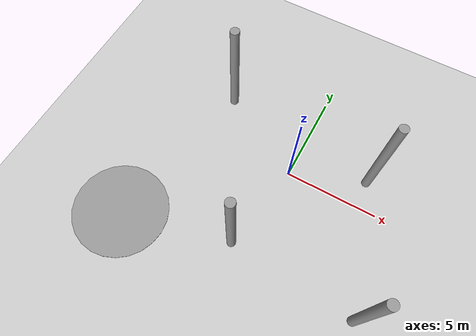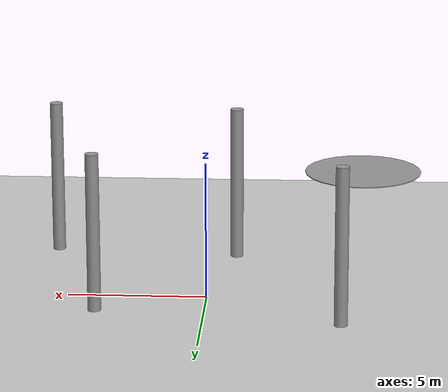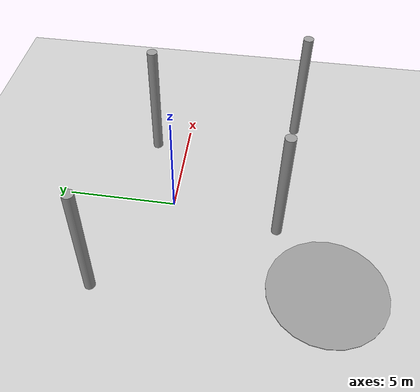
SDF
<sdf version="1.7">
 <world name="default">
  <light name="sun" type="directional">
   <pose>0 0 10 0 -0 0</pose>
   <diffuse>0.8 0.8 0.8 1</diffuse>
   <specular>0.2 0.2 0.2 1</specular>
   <attenuation>
    <range>1000</range>
    <constant>0.9</constant>
    <linear>0.01</linear>
    <quadratic>0.001</quadratic>
   </attenuation>
   <direction>-0.5 0.1 -0.9</direction>
   <spot><inner_angle>0</inner_angle><outer_angle>0</outer_angle><falloff>0</falloff></spot>
  </light>
  <model name="ground_plane">
   <static>1</static>
   <link name="link">
    <collision name="collision">
     <geometry><plane><normal>0 0 1</normal><size>100 100</size></plane></geometry>
     <surface>
      <contact><collide_bitmask>65535</collide_bitmask></contact>
      <friction><ode><mu>100</mu><mu2>50</mu2></ode></friction>
     </surface>
    </collision>
    <visual name="visual">
     <cast_shadows>0</cast_shadows>
     <geometry><plane><normal>0 0 1</normal><size>100 100</size></plane></geometry>
     <material>
      <script><uri>file://media/materials/scripts/gazebo.material</uri><name>Gazebo/Grey</name></script>
     </material>
    </visual>
   </link>
  </model>
  <gravity>0 0 -9.8</gravity>
  <magnetic_field>6e-06 2.3e-05 -4.2e-05</magnetic_field>
  <atmosphere type="adiabatic"/>
  <physics type="ode">
   <max_step_size>0.001</max_step_size>
   <real_time_factor>1</real_time_factor>
   <real_time_update_rate>1000</real_time_update_rate>
  </physics>
  <scene><ambient>0.4 0.4 0.4 1</ambient><background>0.7 0.7 0.7 1</background><shadows>1</shadows></scene>
  <spherical_coordinates>
   <surface_model>EARTH_WGS84</surface_model>
   <latitude_deg>0</latitude_deg>
   <longitude_deg>0</longitude_deg>
   <elevation>0</elevation>
   <heading_deg>0</heading_deg>
  </spherical_coordinates>
  <model name="unit_cylinder">
   <pose>-5.58761 -6.6533 2.87603 -0 -0 -0.005823</pose>
   <link name="link">
    <inertial>
     <mass>1</mass>
     <inertia><ixx>0.145833</ixx><ixy>0</ixy><ixz>0</ixz><iyy>0.145833</iyy><iyz>0</iyz><izz>0.125</izz></inertia>
    </inertial>
    <collision name="collision">
     <geometry><cylinder><radius>2.21366</radius><length>0.0302241</length></cylinder></geometry>
    </collision>
    <visual name="visual">
     <geometry><cylinder><radius>2.21366</radius><length>0.0302241</length></cylinder></geometry>
     <material>
      <script><name>Gazebo/Grey</name><uri>file://media/materials/scripts/gazebo.material</uri></script>
     </material>
    </visual>
   </link>
  </model>
  <model name="unit_cylinder_clone">
   <pose>-4.85551 2.69644 2.87602 0 0 -0.005821</pose>
   <link name="link">
    <inertial>
     <mass>1</mass>
     <inertia><ixx>0.145833</ixx><ixy>0</ixy><ixz>0</ixz><iyy>0.145833</iyy><iyz>0</iyz><izz>0.125</izz></inertia>
    </inertial>
    <collision name="collision">
     <geometry><cylinder><radius>0.237629</radius><length>5.75206</length></cylinder></geometry>
    </collision>
    <visual name="visual">
     <geometry><cylinder><radius>0.237629</radius><length>5.75206</length></cylinder></geometry>
     <material>
      <script><name>Gazebo/Grey</name><uri>file://media/materials/scripts/gazebo.material</uri></script>
     </material>
    </visual>
   </link>
  </model>
  <model name="unit_cylinder_clone_0">
   <pose>-0.849453 -4.85672 2.87603 0 0 -0.005513</pose>
   <link name="link">
    <inertial>
     <mass>1</mass>
     <inertia><ixx>0.145833</ixx><ixy>0</ixy><ixz>0</ixz><iyy>0.145833</iyy><iyz>0</iyz><izz>0.125</izz></inertia>
    </inertial>
    <collision name="collision">
     <geometry><cylinder><radius>0.237629</radius><length>5.75206</length></cylinder></geometry>
    </collision>
    <visual name="visual">
     <geometry><cylinder><radius>0.237629</radius><length>5.75206</length></cylinder></geometry>
     <material>
      <script><name>Gazebo/Grey</name><uri>file://media/materials/scripts/gazebo.material</uri></script>
     </material>
    </visual>
   </link>
  </model>
  <model name="unit_cylinder_clone_1">
   <pose>3.88321 1.54185 2.87602 -0 -0 -0.005231</pose>
   <link name="link">
    <inertial>
     <mass>1</mass>
     <inertia><ixx>0.145833</ixx><ixy>0</ixy><ixz>0</ixz><iyy>0.145833</iyy><iyz>0</iyz><izz>0.125</izz></inertia>
    </inertial>
    <collision name="collision">
     <geometry><cylinder><radius>0.237629</radius><length>5.75206</length></cylinder></geometry>
    </collision>
    <visual name="visual">
     <geometry><cylinder><radius>0.237629</radius><length>5.75206</length></cylinder></geometry>
     <material>
      <script><name>Gazebo/Grey</name><uri>file://media/materials/scripts/gazebo.material</uri></script>
     </material>
    </visual>
   </link>
  </model>
  <model name="unit_cylinder_clone_2">
   <pose>5.99759 -5.40873 2.87602 -0 -0 -0.00481</pose>
   <link name="link">
    <inertial>
     <mass>1</mass>
     <inertia><ixx>0.145833</ixx><ixy>0</ixy><ixz>0</ixz><iyy>0.145833</iyy><iyz>0</iyz><izz>0.125</izz></inertia>
    </inertial>
    <collision name="collision">
     <geometry><cylinder><radius>0.237629</radius><length>5.75206</length></cylinder></geometry>
    </collision>
    <visual name="visual">
     <geometry><cylinder><radius>0.237629</radius><length>5.75206</length></cylinder></geometry>
     <material>
      <script><name>Gazebo/Grey</name><uri>file://media/materials/scripts/gazebo.material</uri></script>
     </material>
    </visual>
   </link>
  </model>
 </world>
</sdf>
